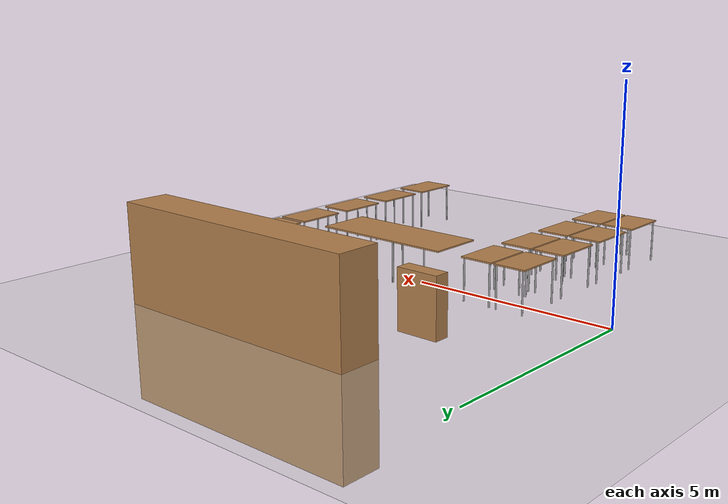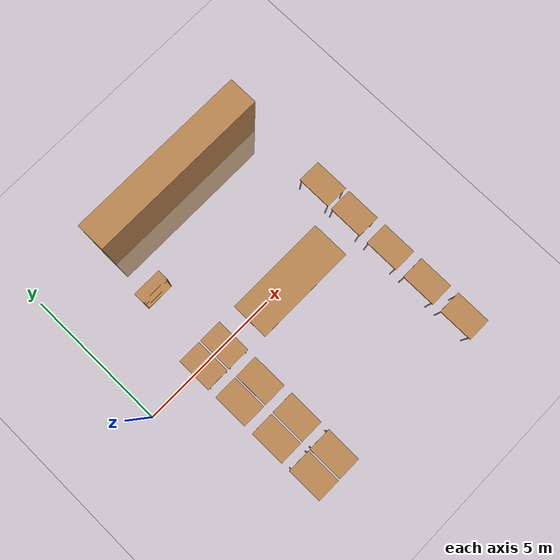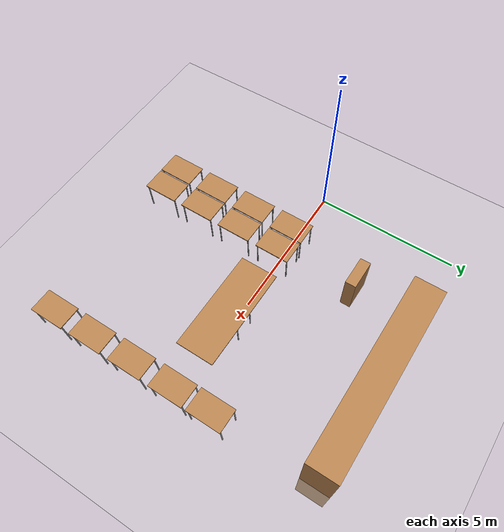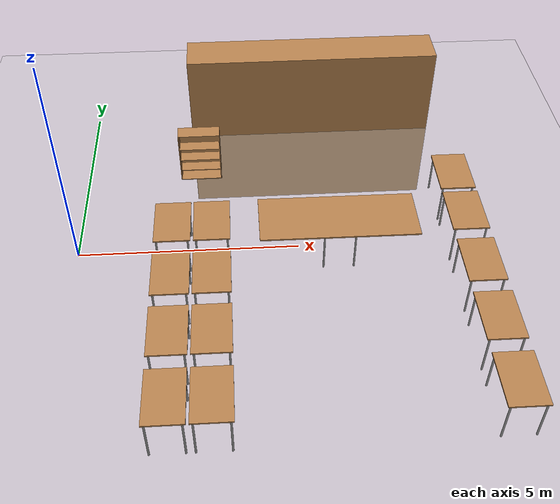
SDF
<sdf version="1.6">
 <world name="default">
  <model name="ground_plane">
   <static>1</static>
   <link name="link">
    <collision name="collision">
     <geometry><plane><normal>0 0 1</normal><size>100 100</size></plane></geometry>
     <surface><friction><ode><mu>100</mu><mu2>50</mu2></ode></friction></surface>
    </collision>
    <visual name="visual">
     <cast_shadows>0</cast_shadows>
     <geometry><plane><normal>0 0 1</normal><size>100 100</size></plane></geometry>
     <material>
      <script><uri>file://media/materials/scripts/gazebo.material</uri><name>Gazebo/Grey</name></script>
     </material>
    </visual>
   </link>
  </model>
  <model name="table_12">
   <pose>2.211245 -4.582113 0 0 -0 1.568221</pose>
   <static>1</static>
   <link name="table_12_link">
    <collision name="surface">
     <pose>0 0 1 0 -0 0</pose>
     <geometry><box><size>1.2 0.8 0.035</size></box></geometry>
     <surface><friction><ode><mu>0.6</mu><mu2>0.6</mu2></ode></friction></surface>
    </collision>
    <visual name="visual1">
     <pose>0 0 1 0 -0 0</pose>
     <geometry><box><size>1.2 0.8 0.035</size></box></geometry>
     <material>
      <script><uri>file://media/materials/scripts/gazebo.material</uri><name>Gazebo/Wood</name></script>
     </material>
    </visual>
    <collision name="front_left_leg">
     <pose>0.56 0.34 0.5 0 -0 0</pose>
     <geometry><cylinder><radius>0.02</radius><length>1</length></cylinder></geometry>
    </collision>
    <visual name="front_left_leg">
     <pose>0.56 0.34 0.5 0 -0 0</pose>
     <geometry><cylinder><radius>0.02</radius><length>1</length></cylinder></geometry>
     <material>
      <script><uri>file://media/materials/scripts/gazebo.material</uri><name>Gazebo/Grey</name></script>
     </material>
    </visual>
    <collision name="front_right_leg">
     <pose>0.56 -0.34 0.5 0 -0 0</pose>
     <geometry><cylinder><radius>0.02</radius><length>1</length></cylinder></geometry>
    </collision>
    <visual name="front_right_leg">
     <pose>0.56 -0.34 0.5 0 -0 0</pose>
     <geometry><cylinder><radius>0.02</radius><length>1</length></cylinder></geometry>
     <material>
      <script><uri>file://media/materials/scripts/gazebo.material</uri><name>Gazebo/Grey</name></script>
     </material>
    </visual>
    <collision name="back_right_leg">
     <pose>-0.56 -0.34 0.5 0 -0 0</pose>
     <geometry><cylinder><radius>0.02</radius><length>1</length></cylinder></geometry>
    </collision>
    <visual name="back_right_leg">
     <pose>-0.56 -0.34 0.5 0 -0 0</pose>
     <geometry><cylinder><radius>0.02</radius><length>1</length></cylinder></geometry>
     <material>
      <script><uri>file://media/materials/scripts/gazebo.material</uri><name>Gazebo/Grey</name></script>
     </material>
    </visual>
    <collision name="back_left_leg">
     <pose>-0.56 0.34 0.5 0 -0 0</pose>
     <geometry><cylinder><radius>0.02</radius><length>1</length></cylinder></geometry>
    </collision>
    <visual name="back_left_leg">
     <pose>-0.56 0.34 0.5 0 -0 0</pose>
     <geometry><cylinder><radius>0.02</radius><length>1</length></cylinder></geometry>
     <material>
      <script><uri>file://media/materials/scripts/gazebo.material</uri><name>Gazebo/Grey</name></script>
     </material>
    </visual>
   </link>
  </model>
  <model name="table_13">
   <pose>2.211245 -3.082113 0 0 -0 1.568221</pose>
   <static>1</static>
   <link name="table_13_link">
    <collision name="surface">
     <pose>0 0 1 0 -0 0</pose>
     <geometry><box><size>1.2 0.8 0.035</size></box></geometry>
     <surface><friction><ode><mu>0.6</mu><mu2>0.6</mu2></ode></friction></surface>
    </collision>
    <visual name="visual1">
     <pose>0 0 1 0 -0 0</pose>
     <geometry><box><size>1.2 0.8 0.035</size></box></geometry>
     <material>
      <script><uri>file://media/materials/scripts/gazebo.material</uri><name>Gazebo/Wood</name></script>
     </material>
    </visual>
    <collision name="front_left_leg">
     <pose>0.56 0.34 0.5 0 -0 0</pose>
     <geometry><cylinder><radius>0.02</radius><length>1</length></cylinder></geometry>
    </collision>
    <visual name="front_left_leg">
     <pose>0.56 0.34 0.5 0 -0 0</pose>
     <geometry><cylinder><radius>0.02</radius><length>1</length></cylinder></geometry>
     <material>
      <script><uri>file://media/materials/scripts/gazebo.material</uri><name>Gazebo/Grey</name></script>
     </material>
    </visual>
    <collision name="front_right_leg">
     <pose>0.56 -0.34 0.5 0 -0 0</pose>
     <geometry><cylinder><radius>0.02</radius><length>1</length></cylinder></geometry>
    </collision>
    <visual name="front_right_leg">
     <pose>0.56 -0.34 0.5 0 -0 0</pose>
     <geometry><cylinder><radius>0.02</radius><length>1</length></cylinder></geometry>
     <material>
      <script><uri>file://media/materials/scripts/gazebo.material</uri><name>Gazebo/Grey</name></script>
     </material>
    </visual>
    <collision name="back_right_leg">
     <pose>-0.56 -0.34 0.5 0 -0 0</pose>
     <geometry><cylinder><radius>0.02</radius><length>1</length></cylinder></geometry>
    </collision>
    <visual name="back_right_leg">
     <pose>-0.56 -0.34 0.5 0 -0 0</pose>
     <geometry><cylinder><radius>0.02</radius><length>1</length></cylinder></geometry>
     <material>
      <script><uri>file://media/materials/scripts/gazebo.material</uri><name>Gazebo/Grey</name></script>
     </material>
    </visual>
    <collision name="back_left_leg">
     <pose>-0.56 0.34 0.5 0 -0 0</pose>
     <geometry><cylinder><radius>0.02</radius><length>1</length></cylinder></geometry>
    </collision>
    <visual name="back_left_leg">
     <pose>-0.56 0.34 0.5 0 -0 0</pose>
     <geometry><cylinder><radius>0.02</radius><length>1</length></cylinder></geometry>
     <material>
      <script><uri>file://media/materials/scripts/gazebo.material</uri><name>Gazebo/Grey</name></script>
     </material>
    </visual>
   </link>
  </model>
  <model name="table_14">
   <pose>2.211245 -1.582113 0 0 -0 1.568221</pose>
   <static>1</static>
   <link name="table_14_link">
    <collision name="surface">
     <pose>0 0 1 0 -0 0</pose>
     <geometry><box><size>1.2 0.8 0.035</size></box></geometry>
     <surface><friction><ode><mu>0.6</mu><mu2>0.6</mu2></ode></friction></surface>
    </collision>
    <visual name="visual1">
     <pose>0 0 1 0 -0 0</pose>
     <geometry><box><size>1.2 0.8 0.035</size></box></geometry>
     <material>
      <script><uri>file://media/materials/scripts/gazebo.material</uri><name>Gazebo/Wood</name></script>
     </material>
    </visual>
    <collision name="front_left_leg">
     <pose>0.56 0.34 0.5 0 -0 0</pose>
     <geometry><cylinder><radius>0.02</radius><length>1</length></cylinder></geometry>
    </collision>
    <visual name="front_left_leg">
     <pose>0.56 0.34 0.5 0 -0 0</pose>
     <geometry><cylinder><radius>0.02</radius><length>1</length></cylinder></geometry>
     <material>
      <script><uri>file://media/materials/scripts/gazebo.material</uri><name>Gazebo/Grey</name></script>
     </material>
    </visual>
    <collision name="front_right_leg">
     <pose>0.56 -0.34 0.5 0 -0 0</pose>
     <geometry><cylinder><radius>0.02</radius><length>1</length></cylinder></geometry>
    </collision>
    <visual name="front_right_leg">
     <pose>0.56 -0.34 0.5 0 -0 0</pose>
     <geometry><cylinder><radius>0.02</radius><length>1</length></cylinder></geometry>
     <material>
      <script><uri>file://media/materials/scripts/gazebo.material</uri><name>Gazebo/Grey</name></script>
     </material>
    </visual>
    <collision name="back_right_leg">
     <pose>-0.56 -0.34 0.5 0 -0 0</pose>
     <geometry><cylinder><radius>0.02</radius><length>1</length></cylinder></geometry>
    </collision>
    <visual name="back_right_leg">
     <pose>-0.56 -0.34 0.5 0 -0 0</pose>
     <geometry><cylinder><radius>0.02</radius><length>1</length></cylinder></geometry>
     <material>
      <script><uri>file://media/materials/scripts/gazebo.material</uri><name>Gazebo/Grey</name></script>
     </material>
    </visual>
    <collision name="back_left_leg">
     <pose>-0.56 0.34 0.5 0 -0 0</pose>
     <geometry><cylinder><radius>0.02</radius><length>1</length></cylinder></geometry>
    </collision>
    <visual name="back_left_leg">
     <pose>-0.56 0.34 0.5 0 -0 0</pose>
     <geometry><cylinder><radius>0.02</radius><length>1</length></cylinder></geometry>
     <material>
      <script><uri>file://media/materials/scripts/gazebo.material</uri><name>Gazebo/Grey</name></script>
     </material>
    </visual>
   </link>
  </model>
  <model name="table_15">
   <pose>2.211245 -0.082113 0 0 -0 1.568221</pose>
   <static>1</static>
   <link name="table_15_link">
    <collision name="surface">
     <pose>0 0 1 0 -0 0</pose>
     <geometry><box><size>1.2 0.8 0.035</size></box></geometry>
     <surface><friction><ode><mu>0.6</mu><mu2>0.6</mu2></ode></friction></surface>
    </collision>
    <visual name="visual1">
     <pose>0 0 1 0 -0 0</pose>
     <geometry><box><size>1.2 0.8 0.035</size></box></geometry>
     <material>
      <script><uri>file://media/materials/scripts/gazebo.material</uri><name>Gazebo/Wood</name></script>
     </material>
    </visual>
    <collision name="front_left_leg">
     <pose>0.56 0.34 0.5 0 -0 0</pose>
     <geometry><cylinder><radius>0.02</radius><length>1</length></cylinder></geometry>
    </collision>
    <visual name="front_left_leg">
     <pose>0.56 0.34 0.5 0 -0 0</pose>
     <geometry><cylinder><radius>0.02</radius><length>1</length></cylinder></geometry>
     <material>
      <script><uri>file://media/materials/scripts/gazebo.material</uri><name>Gazebo/Grey</name></script>
     </material>
    </visual>
    <collision name="front_right_leg">
     <pose>0.56 -0.34 0.5 0 -0 0</pose>
     <geometry><cylinder><radius>0.02</radius><length>1</length></cylinder></geometry>
    </collision>
    <visual name="front_right_leg">
     <pose>0.56 -0.34 0.5 0 -0 0</pose>
     <geometry><cylinder><radius>0.02</radius><length>1</length></cylinder></geometry>
     <material>
      <script><uri>file://media/materials/scripts/gazebo.material</uri><name>Gazebo/Grey</name></script>
     </material>
    </visual>
    <collision name="back_right_leg">
     <pose>-0.56 -0.34 0.5 0 -0 0</pose>
     <geometry><cylinder><radius>0.02</radius><length>1</length></cylinder></geometry>
    </collision>
    <visual name="back_right_leg">
     <pose>-0.56 -0.34 0.5 0 -0 0</pose>
     <geometry><cylinder><radius>0.02</radius><length>1</length></cylinder></geometry>
     <material>
      <script><uri>file://media/materials/scripts/gazebo.material</uri><name>Gazebo/Grey</name></script>
     </material>
    </visual>
    <collision name="back_left_leg">
     <pose>-0.56 0.34 0.5 0 -0 0</pose>
     <geometry><cylinder><radius>0.02</radius><length>1</length></cylinder></geometry>
    </collision>
    <visual name="back_left_leg">
     <pose>-0.56 0.34 0.5 0 -0 0</pose>
     <geometry><cylinder><radius>0.02</radius><length>1</length></cylinder></geometry>
     <material>
      <script><uri>file://media/materials/scripts/gazebo.material</uri><name>Gazebo/Grey</name></script>
     </material>
    </visual>
   </link>
  </model>
  <model name="table_16">
   <pose>3.069529 -4.582113 0 0 -0 1.568221</pose>
   <static>1</static>
   <link name="table_16_link">
    <collision name="surface">
     <pose>0 0 1 0 -0 0</pose>
     <geometry><box><size>1.2 0.8 0.035</size></box></geometry>
     <surface><friction><ode><mu>0.6</mu><mu2>0.6</mu2></ode></friction></surface>
    </collision>
    <visual name="visual1">
     <pose>0 0 1 0 -0 0</pose>
     <geometry><box><size>1.2 0.8 0.035</size></box></geometry>
     <material>
      <script><uri>file://media/materials/scripts/gazebo.material</uri><name>Gazebo/Wood</name></script>
     </material>
    </visual>
    <collision name="front_left_leg">
     <pose>0.56 0.34 0.5 0 -0 0</pose>
     <geometry><cylinder><radius>0.02</radius><length>1</length></cylinder></geometry>
    </collision>
    <visual name="front_left_leg">
     <pose>0.56 0.34 0.5 0 -0 0</pose>
     <geometry><cylinder><radius>0.02</radius><length>1</length></cylinder></geometry>
     <material>
      <script><uri>file://media/materials/scripts/gazebo.material</uri><name>Gazebo/Grey</name></script>
     </material>
    </visual>
    <collision name="front_right_leg">
     <pose>0.56 -0.34 0.5 0 -0 0</pose>
     <geometry><cylinder><radius>0.02</radius><length>1</length></cylinder></geometry>
    </collision>
    <visual name="front_right_leg">
     <pose>0.56 -0.34 0.5 0 -0 0</pose>
     <geometry><cylinder><radius>0.02</radius><length>1</length></cylinder></geometry>
     <material>
      <script><uri>file://media/materials/scripts/gazebo.material</uri><name>Gazebo/Grey</name></script>
     </material>
    </visual>
    <collision name="back_right_leg">
     <pose>-0.56 -0.34 0.5 0 -0 0</pose>
     <geometry><cylinder><radius>0.02</radius><length>1</length></cylinder></geometry>
    </collision>
    <visual name="back_right_leg">
     <pose>-0.56 -0.34 0.5 0 -0 0</pose>
     <geometry><cylinder><radius>0.02</radius><length>1</length></cylinder></geometry>
     <material>
      <script><uri>file://media/materials/scripts/gazebo.material</uri><name>Gazebo/Grey</name></script>
     </material>
    </visual>
    <collision name="back_left_leg">
     <pose>-0.56 0.34 0.5 0 -0 0</pose>
     <geometry><cylinder><radius>0.02</radius><length>1</length></cylinder></geometry>
    </collision>
    <visual name="back_left_leg">
     <pose>-0.56 0.34 0.5 0 -0 0</pose>
     <geometry><cylinder><radius>0.02</radius><length>1</length></cylinder></geometry>
     <material>
      <script><uri>file://media/materials/scripts/gazebo.material</uri><name>Gazebo/Grey</name></script>
     </material>
    </visual>
   </link>
  </model>
  <model name="table_17">
   <pose>3.069529 -3.082113 0 0 -0 1.568221</pose>
   <static>1</static>
   <link name="table_17_link">
    <collision name="surface">
     <pose>0 0 1 0 -0 0</pose>
     <geometry><box><size>1.2 0.8 0.035</size></box></geometry>
     <surface><friction><ode><mu>0.6</mu><mu2>0.6</mu2></ode></friction></surface>
    </collision>
    <visual name="visual1">
     <pose>0 0 1 0 -0 0</pose>
     <geometry><box><size>1.2 0.8 0.035</size></box></geometry>
     <material>
      <script><uri>file://media/materials/scripts/gazebo.material</uri><name>Gazebo/Wood</name></script>
     </material>
    </visual>
    <collision name="front_left_leg">
     <pose>0.56 0.34 0.5 0 -0 0</pose>
     <geometry><cylinder><radius>0.02</radius><length>1</length></cylinder></geometry>
    </collision>
    <visual name="front_left_leg">
     <pose>0.56 0.34 0.5 0 -0 0</pose>
     <geometry><cylinder><radius>0.02</radius><length>1</length></cylinder></geometry>
     <material>
      <script><uri>file://media/materials/scripts/gazebo.material</uri><name>Gazebo/Grey</name></script>
     </material>
    </visual>
    <collision name="front_right_leg">
     <pose>0.56 -0.34 0.5 0 -0 0</pose>
     <geometry><cylinder><radius>0.02</radius><length>1</length></cylinder></geometry>
    </collision>
    <visual name="front_right_leg">
     <pose>0.56 -0.34 0.5 0 -0 0</pose>
     <geometry><cylinder><radius>0.02</radius><length>1</length></cylinder></geometry>
     <material>
      <script><uri>file://media/materials/scripts/gazebo.material</uri><name>Gazebo/Grey</name></script>
     </material>
    </visual>
    <collision name="back_right_leg">
     <pose>-0.56 -0.34 0.5 0 -0 0</pose>
     <geometry><cylinder><radius>0.02</radius><length>1</length></cylinder></geometry>
    </collision>
    <visual name="back_right_leg">
     <pose>-0.56 -0.34 0.5 0 -0 0</pose>
     <geometry><cylinder><radius>0.02</radius><length>1</length></cylinder></geometry>
     <material>
      <script><uri>file://media/materials/scripts/gazebo.material</uri><name>Gazebo/Grey</name></script>
     </material>
    </visual>
    <collision name="back_left_leg">
     <pose>-0.56 0.34 0.5 0 -0 0</pose>
     <geometry><cylinder><radius>0.02</radius><length>1</length></cylinder></geometry>
    </collision>
    <visual name="back_left_leg">
     <pose>-0.56 0.34 0.5 0 -0 0</pose>
     <geometry><cylinder><radius>0.02</radius><length>1</length></cylinder></geometry>
     <material>
      <script><uri>file://media/materials/scripts/gazebo.material</uri><name>Gazebo/Grey</name></script>
     </material>
    </visual>
   </link>
  </model>
  <model name="table_18">
   <pose>3.069529 -1.582113 0 0 -0 1.568221</pose>
   <static>1</static>
   <link name="table_18_link">
    <collision name="surface">
     <pose>0 0 1 0 -0 0</pose>
     <geometry><box><size>1.2 0.8 0.035</size></box></geometry>
     <surface><friction><ode><mu>0.6</mu><mu2>0.6</mu2></ode></friction></surface>
    </collision>
    <visual name="visual1">
     <pose>0 0 1 0 -0 0</pose>
     <geometry><box><size>1.2 0.8 0.035</size></box></geometry>
     <material>
      <script><uri>file://media/materials/scripts/gazebo.material</uri><name>Gazebo/Wood</name></script>
     </material>
    </visual>
    <collision name="front_left_leg">
     <pose>0.56 0.34 0.5 0 -0 0</pose>
     <geometry><cylinder><radius>0.02</radius><length>1</length></cylinder></geometry>
    </collision>
    <visual name="front_left_leg">
     <pose>0.56 0.34 0.5 0 -0 0</pose>
     <geometry><cylinder><radius>0.02</radius><length>1</length></cylinder></geometry>
     <material>
      <script><uri>file://media/materials/scripts/gazebo.material</uri><name>Gazebo/Grey</name></script>
     </material>
    </visual>
    <collision name="front_right_leg">
     <pose>0.56 -0.34 0.5 0 -0 0</pose>
     <geometry><cylinder><radius>0.02</radius><length>1</length></cylinder></geometry>
    </collision>
    <visual name="front_right_leg">
     <pose>0.56 -0.34 0.5 0 -0 0</pose>
     <geometry><cylinder><radius>0.02</radius><length>1</length></cylinder></geometry>
     <material>
      <script><uri>file://media/materials/scripts/gazebo.material</uri><name>Gazebo/Grey</name></script>
     </material>
    </visual>
    <collision name="back_right_leg">
     <pose>-0.56 -0.34 0.5 0 -0 0</pose>
     <geometry><cylinder><radius>0.02</radius><length>1</length></cylinder></geometry>
    </collision>
    <visual name="back_right_leg">
     <pose>-0.56 -0.34 0.5 0 -0 0</pose>
     <geometry><cylinder><radius>0.02</radius><length>1</length></cylinder></geometry>
     <material>
      <script><uri>file://media/materials/scripts/gazebo.material</uri><name>Gazebo/Grey</name></script>
     </material>
    </visual>
    <collision name="back_left_leg">
     <pose>-0.56 0.34 0.5 0 -0 0</pose>
     <geometry><cylinder><radius>0.02</radius><length>1</length></cylinder></geometry>
    </collision>
    <visual name="back_left_leg">
     <pose>-0.56 0.34 0.5 0 -0 0</pose>
     <geometry><cylinder><radius>0.02</radius><length>1</length></cylinder></geometry>
     <material>
      <script><uri>file://media/materials/scripts/gazebo.material</uri><name>Gazebo/Grey</name></script>
     </material>
    </visual>
   </link>
  </model>
  <model name="table_19">
   <pose>3.069529 -0.082113 0 0 -0 1.568221</pose>
   <static>1</static>
   <link name="table_19_link">
    <collision name="surface">
     <pose>0 0 1 0 -0 0</pose>
     <geometry><box><size>1.2 0.8 0.035</size></box></geometry>
     <surface><friction><ode><mu>0.6</mu><mu2>0.6</mu2></ode></friction></surface>
    </collision>
    <visual name="visual1">
     <pose>0 0 1 0 -0 0</pose>
     <geometry><box><size>1.2 0.8 0.035</size></box></geometry>
     <material>
      <script><uri>file://media/materials/scripts/gazebo.material</uri><name>Gazebo/Wood</name></script>
     </material>
    </visual>
    <collision name="front_left_leg">
     <pose>0.56 0.34 0.5 0 -0 0</pose>
     <geometry><cylinder><radius>0.02</radius><length>1</length></cylinder></geometry>
    </collision>
    <visual name="front_left_leg">
     <pose>0.56 0.34 0.5 0 -0 0</pose>
     <geometry><cylinder><radius>0.02</radius><length>1</length></cylinder></geometry>
     <material>
      <script><uri>file://media/materials/scripts/gazebo.material</uri><name>Gazebo/Grey</name></script>
     </material>
    </visual>
    <collision name="front_right_leg">
     <pose>0.56 -0.34 0.5 0 -0 0</pose>
     <geometry><cylinder><radius>0.02</radius><length>1</length></cylinder></geometry>
    </collision>
    <visual name="front_right_leg">
     <pose>0.56 -0.34 0.5 0 -0 0</pose>
     <geometry><cylinder><radius>0.02</radius><length>1</length></cylinder></geometry>
     <material>
      <script><uri>file://media/materials/scripts/gazebo.material</uri><name>Gazebo/Grey</name></script>
     </material>
    </visual>
    <collision name="back_right_leg">
     <pose>-0.56 -0.34 0.5 0 -0 0</pose>
     <geometry><cylinder><radius>0.02</radius><length>1</length></cylinder></geometry>
    </collision>
    <visual name="back_right_leg">
     <pose>-0.56 -0.34 0.5 0 -0 0</pose>
     <geometry><cylinder><radius>0.02</radius><length>1</length></cylinder></geometry>
     <material>
      <script><uri>file://media/materials/scripts/gazebo.material</uri><name>Gazebo/Grey</name></script>
     </material>
    </visual>
    <collision name="back_left_leg">
     <pose>-0.56 0.34 0.5 0 -0 0</pose>
     <geometry><cylinder><radius>0.02</radius><length>1</length></cylinder></geometry>
    </collision>
    <visual name="back_left_leg">
     <pose>-0.56 0.34 0.5 0 -0 0</pose>
     <geometry><cylinder><radius>0.02</radius><length>1</length></cylinder></geometry>
     <material>
      <script><uri>file://media/materials/scripts/gazebo.material</uri><name>Gazebo/Grey</name></script>
     </material>
    </visual>
   </link>
  </model>
  <model name="table_20">
   <pose>5.852119 -0.129126 0  0 -0 1.568221</pose>
   <static>1</static>
   <link name="table_20_link">
    <collision name="surface">
     <pose>0 0 1 0 -0 0</pose>
     <geometry><box><size>1.3 3.50 0.035</size></box></geometry>
     <surface><friction><ode><mu>0.6</mu><mu2>0.6</mu2></ode></friction></surface>
    </collision>
    <visual name="visual1">
     <pose>0 0 1 0 -0 0</pose>
     <geometry><box><size>1.3 3.50 0.035</size></box></geometry>
     <material>
      <script><uri>file://media/materials/scripts/gazebo.material</uri><name>Gazebo/Wood</name></script>
     </material>
    </visual>
    <collision name="front_left_leg">
     <pose>0.56 0.34 0.5 0 -0 0</pose>
     <geometry><cylinder><radius>0.02</radius><length>1</length></cylinder></geometry>
    </collision>
    <visual name="front_left_leg">
     <pose>0.56 0.34 0.5 0 -0 0</pose>
     <geometry><cylinder><radius>0.02</radius><length>1</length></cylinder></geometry>
     <material>
      <script><uri>file://media/materials/scripts/gazebo.material</uri><name>Gazebo/Grey</name></script>
     </material>
    </visual>
    <collision name="front_right_leg">
     <pose>0.56 -0.34 0.5 0 -0 0</pose>
     <geometry><cylinder><radius>0.02</radius><length>1</length></cylinder></geometry>
    </collision>
    <visual name="front_right_leg">
     <pose>0.56 -0.34 0.5 0 -0 0</pose>
     <geometry><cylinder><radius>0.02</radius><length>1</length></cylinder></geometry>
     <material>
      <script><uri>file://media/materials/scripts/gazebo.material</uri><name>Gazebo/Grey</name></script>
     </material>
    </visual>
    <collision name="back_right_leg">
     <pose>-0.56 -0.34 0.5 0 -0 0</pose>
     <geometry><cylinder><radius>0.02</radius><length>1</length></cylinder></geometry>
    </collision>
    <visual name="back_right_leg">
     <pose>-0.56 -0.34 0.5 0 -0 0</pose>
     <geometry><cylinder><radius>0.02</radius><length>1</length></cylinder></geometry>
     <material>
      <script><uri>file://media/materials/scripts/gazebo.material</uri><name>Gazebo/Grey</name></script>
     </material>
    </visual>
    <collision name="back_left_leg">
     <pose>-0.56 0.34 0.5 0 -0 0</pose>
     <geometry><cylinder><radius>0.02</radius><length>1</length></cylinder></geometry>
    </collision>
    <visual name="back_left_leg">
     <pose>-0.56 0.34 0.5 0 -0 0</pose>
     <geometry><cylinder><radius>0.02</radius><length>1</length></cylinder></geometry>
     <material>
      <script><uri>file://media/materials/scripts/gazebo.material</uri><name>Gazebo/Grey</name></script>
     </material>
    </visual>
   </link>
  </model>
  <model name="table_120">
   <pose>8.713411 -4.582113 0 0 -0 1.568221</pose>
   <static>1</static>
   <link name="table_120_link">
    <collision name="surface">
     <pose>0 0 1 0 -0 0</pose>
     <geometry><box><size>1.2 0.8 0.035</size></box></geometry>
     <surface><friction><ode><mu>0.6</mu><mu2>0.6</mu2></ode></friction></surface>
    </collision>
    <visual name="visual1">
     <pose>0 0 1 0 -0 0</pose>
     <geometry><box><size>1.2 0.8 0.035</size></box></geometry>
     <material>
      <script><uri>file://media/materials/scripts/gazebo.material</uri><name>Gazebo/Wood</name></script>
     </material>
    </visual>
    <collision name="front_left_leg">
     <pose>0.56 0.34 0.5 0 -0 0</pose>
     <geometry><cylinder><radius>0.02</radius><length>1</length></cylinder></geometry>
    </collision>
    <visual name="front_left_leg">
     <pose>0.56 0.34 0.5 0 -0 0</pose>
     <geometry><cylinder><radius>0.02</radius><length>1</length></cylinder></geometry>
     <material>
      <script><uri>file://media/materials/scripts/gazebo.material</uri><name>Gazebo/Grey</name></script>
     </material>
    </visual>
    <collision name="front_right_leg">
     <pose>0.56 -0.34 0.5 0 -0 0</pose>
     <geometry><cylinder><radius>0.02</radius><length>1</length></cylinder></geometry>
    </collision>
    <visual name="front_right_leg">
     <pose>0.56 -0.34 0.5 0 -0 0</pose>
     <geometry><cylinder><radius>0.02</radius><length>1</length></cylinder></geometry>
     <material>
      <script><uri>file://media/materials/scripts/gazebo.material</uri><name>Gazebo/Grey</name></script>
     </material>
    </visual>
    <collision name="back_right_leg">
     <pose>-0.56 -0.34 0.5 0 -0 0</pose>
     <geometry><cylinder><radius>0.02</radius><length>1</length></cylinder></geometry>
    </collision>
    <visual name="back_right_leg">
     <pose>-0.56 -0.34 0.5 0 -0 0</pose>
     <geometry><cylinder><radius>0.02</radius><length>1</length></cylinder></geometry>
     <material>
      <script><uri>file://media/materials/scripts/gazebo.material</uri><name>Gazebo/Grey</name></script>
     </material>
    </visual>
    <collision name="back_left_leg">
     <pose>-0.56 0.34 0.5 0 -0 0</pose>
     <geometry><cylinder><radius>0.02</radius><length>1</length></cylinder></geometry>
    </collision>
    <visual name="back_left_leg">
     <pose>-0.56 0.34 0.5 0 -0 0</pose>
     <geometry><cylinder><radius>0.02</radius><length>1</length></cylinder></geometry>
     <material>
      <script><uri>file://media/materials/scripts/gazebo.material</uri><name>Gazebo/Grey</name></script>
     </material>
    </visual>
   </link>
  </model>
  <model name="table_121">
   <pose>8.713411 -3.082113 0 0 -0 1.568221</pose>
   <static>1</static>
   <link name="table_121_link">
    <collision name="surface">
     <pose>0 0 1 0 -0 0</pose>
     <geometry><box><size>1.2 0.8 0.035</size></box></geometry>
     <surface><friction><ode><mu>0.6</mu><mu2>0.6</mu2></ode></friction></surface>
    </collision>
    <visual name="visual1">
     <pose>0 0 1 0 -0 0</pose>
     <geometry><box><size>1.2 0.8 0.035</size></box></geometry>
     <material>
      <script><uri>file://media/materials/scripts/gazebo.material</uri><name>Gazebo/Wood</name></script>
     </material>
    </visual>
    <collision name="front_left_leg">
     <pose>0.56 0.34 0.5 0 -0 0</pose>
     <geometry><cylinder><radius>0.02</radius><length>1</length></cylinder></geometry>
    </collision>
    <visual name="front_left_leg">
     <pose>0.56 0.34 0.5 0 -0 0</pose>
     <geometry><cylinder><radius>0.02</radius><length>1</length></cylinder></geometry>
     <material>
      <script><uri>file://media/materials/scripts/gazebo.material</uri><name>Gazebo/Grey</name></script>
     </material>
    </visual>
    <collision name="front_right_leg">
     <pose>0.56 -0.34 0.5 0 -0 0</pose>
     <geometry><cylinder><radius>0.02</radius><length>1</length></cylinder></geometry>
    </collision>
    <visual name="front_right_leg">
     <pose>0.56 -0.34 0.5 0 -0 0</pose>
     <geometry><cylinder><radius>0.02</radius><length>1</length></cylinder></geometry>
     <material>
      <script><uri>file://media/materials/scripts/gazebo.material</uri><name>Gazebo/Grey</name></script>
     </material>
    </visual>
    <collision name="back_right_leg">
     <pose>-0.56 -0.34 0.5 0 -0 0</pose>
     <geometry><cylinder><radius>0.02</radius><length>1</length></cylinder></geometry>
    </collision>
    <visual name="back_right_leg">
     <pose>-0.56 -0.34 0.5 0 -0 0</pose>
     <geometry><cylinder><radius>0.02</radius><length>1</length></cylinder></geometry>
     <material>
      <script><uri>file://media/materials/scripts/gazebo.material</uri><name>Gazebo/Grey</name></script>
     </material>
    </visual>
    <collision name="back_left_leg">
     <pose>-0.56 0.34 0.5 0 -0 0</pose>
     <geometry><cylinder><radius>0.02</radius><length>1</length></cylinder></geometry>
    </collision>
    <visual name="back_left_leg">
     <pose>-0.56 0.34 0.5 0 -0 0</pose>
     <geometry><cylinder><radius>0.02</radius><length>1</length></cylinder></geometry>
     <material>
      <script><uri>file://media/materials/scripts/gazebo.material</uri><name>Gazebo/Grey</name></script>
     </material>
    </visual>
   </link>
  </model>
  <model name="table_122">
   <pose>8.713411 -1.582113 0 0 -0 1.568221</pose>
   <static>1</static>
   <link name="table_122_link">
    <collision name="surface">
     <pose>0 0 1 0 -0 0</pose>
     <geometry><box><size>1.2 0.8 0.035</size></box></geometry>
     <surface><friction><ode><mu>0.6</mu><mu2>0.6</mu2></ode></friction></surface>
    </collision>
    <visual name="visual1">
     <pose>0 0 1 0 -0 0</pose>
     <geometry><box><size>1.2 0.8 0.035</size></box></geometry>
     <material>
      <script><uri>file://media/materials/scripts/gazebo.material</uri><name>Gazebo/Wood</name></script>
     </material>
    </visual>
    <collision name="front_left_leg">
     <pose>0.56 0.34 0.5 0 -0 0</pose>
     <geometry><cylinder><radius>0.02</radius><length>1</length></cylinder></geometry>
    </collision>
    <visual name="front_left_leg">
     <pose>0.56 0.34 0.5 0 -0 0</pose>
     <geometry><cylinder><radius>0.02</radius><length>1</length></cylinder></geometry>
     <material>
      <script><uri>file://media/materials/scripts/gazebo.material</uri><name>Gazebo/Grey</name></script>
     </material>
    </visual>
    <collision name="front_right_leg">
     <pose>0.56 -0.34 0.5 0 -0 0</pose>
     <geometry><cylinder><radius>0.02</radius><length>1</length></cylinder></geometry>
    </collision>
    <visual name="front_right_leg">
     <pose>0.56 -0.34 0.5 0 -0 0</pose>
     <geometry><cylinder><radius>0.02</radius><length>1</length></cylinder></geometry>
     <material>
      <script><uri>file://media/materials/scripts/gazebo.material</uri><name>Gazebo/Grey</name></script>
     </material>
    </visual>
    <collision name="back_right_leg">
     <pose>-0.56 -0.34 0.5 0 -0 0</pose>
     <geometry><cylinder><radius>0.02</radius><length>1</length></cylinder></geometry>
    </collision>
    <visual name="back_right_leg">
     <pose>-0.56 -0.34 0.5 0 -0 0</pose>
     <geometry><cylinder><radius>0.02</radius><length>1</length></cylinder></geometry>
     <material>
      <script><uri>file://media/materials/scripts/gazebo.material</uri><name>Gazebo/Grey</name></script>
     </material>
    </visual>
    <collision name="back_left_leg">
     <pose>-0.56 0.34 0.5 0 -0 0</pose>
     <geometry><cylinder><radius>0.02</radius><length>1</length></cylinder></geometry>
    </collision>
    <visual name="back_left_leg">
     <pose>-0.56 0.34 0.5 0 -0 0</pose>
     <geometry><cylinder><radius>0.02</radius><length>1</length></cylinder></geometry>
     <material>
      <script><uri>file://media/materials/scripts/gazebo.material</uri><name>Gazebo/Grey</name></script>
     </material>
    </visual>
   </link>
  </model>
  <model name="table_123">
   <pose>8.713411 -0.082113 0 0 -0 1.568221</pose>
   <static>1</static>
   <link name="table_123_link">
    <collision name="surface">
     <pose>0 0 1 0 -0 0</pose>
     <geometry><box><size>1.2 0.8 0.035</size></box></geometry>
     <surface><friction><ode><mu>0.6</mu><mu2>0.6</mu2></ode></friction></surface>
    </collision>
    <visual name="visual1">
     <pose>0 0 1 0 -0 0</pose>
     <geometry><box><size>1.2 0.8 0.035</size></box></geometry>
     <material>
      <script><uri>file://media/materials/scripts/gazebo.material</uri><name>Gazebo/Wood</name></script>
     </material>
    </visual>
    <collision name="front_left_leg">
     <pose>0.56 0.34 0.5 0 -0 0</pose>
     <geometry><cylinder><radius>0.02</radius><length>1</length></cylinder></geometry>
    </collision>
    <visual name="front_left_leg">
     <pose>0.56 0.34 0.5 0 -0 0</pose>
     <geometry><cylinder><radius>0.02</radius><length>1</length></cylinder></geometry>
     <material>
      <script><uri>file://media/materials/scripts/gazebo.material</uri><name>Gazebo/Grey</name></script>
     </material>
    </visual>
    <collision name="front_right_leg">
     <pose>0.56 -0.34 0.5 0 -0 0</pose>
     <geometry><cylinder><radius>0.02</radius><length>1</length></cylinder></geometry>
    </collision>
    <visual name="front_right_leg">
     <pose>0.56 -0.34 0.5 0 -0 0</pose>
     <geometry><cylinder><radius>0.02</radius><length>1</length></cylinder></geometry>
     <material>
      <script><uri>file://media/materials/scripts/gazebo.material</uri><name>Gazebo/Grey</name></script>
     </material>
    </visual>
    <collision name="back_right_leg">
     <pose>-0.56 -0.34 0.5 0 -0 0</pose>
     <geometry><cylinder><radius>0.02</radius><length>1</length></cylinder></geometry>
    </collision>
    <visual name="back_right_leg">
     <pose>-0.56 -0.34 0.5 0 -0 0</pose>
     <geometry><cylinder><radius>0.02</radius><length>1</length></cylinder></geometry>
     <material>
      <script><uri>file://media/materials/scripts/gazebo.material</uri><name>Gazebo/Grey</name></script>
     </material>
    </visual>
    <collision name="back_left_leg">
     <pose>-0.56 0.34 0.5 0 -0 0</pose>
     <geometry><cylinder><radius>0.02</radius><length>1</length></cylinder></geometry>
    </collision>
    <visual name="back_left_leg">
     <pose>-0.56 0.34 0.5 0 -0 0</pose>
     <geometry><cylinder><radius>0.02</radius><length>1</length></cylinder></geometry>
     <material>
      <script><uri>file://media/materials/scripts/gazebo.material</uri><name>Gazebo/Grey</name></script>
     </material>
    </visual>
   </link>
  </model>
  <model name="table_124">
   <pose>8.713411 1.244753 0  0 -0 1.568221</pose>
   <static>1</static>
   <link name="table_124_link">
    <collision name="surface">
     <pose>0 0 1 0 -0 0</pose>
     <geometry><box><size>1.2 0.8 0.035</size></box></geometry>
     <surface><friction><ode><mu>0.6</mu><mu2>0.6</mu2></ode></friction></surface>
    </collision>
    <visual name="visual1">
     <pose>0 0 1 0 -0 0</pose>
     <geometry><box><size>1.2 0.8 0.035</size></box></geometry>
     <material>
      <script><uri>file://media/materials/scripts/gazebo.material</uri><name>Gazebo/Wood</name></script>
     </material>
    </visual>
    <collision name="front_left_leg">
     <pose>0.56 0.34 0.5 0 -0 0</pose>
     <geometry><cylinder><radius>0.02</radius><length>1</length></cylinder></geometry>
    </collision>
    <visual name="front_left_leg">
     <pose>0.56 0.34 0.5 0 -0 0</pose>
     <geometry><cylinder><radius>0.02</radius><length>1</length></cylinder></geometry>
     <material>
      <script><uri>file://media/materials/scripts/gazebo.material</uri><name>Gazebo/Grey</name></script>
     </material>
    </visual>
    <collision name="front_right_leg">
     <pose>0.56 -0.34 0.5 0 -0 0</pose>
     <geometry><cylinder><radius>0.02</radius><length>1</length></cylinder></geometry>
    </collision>
    <visual name="front_right_leg">
     <pose>0.56 -0.34 0.5 0 -0 0</pose>
     <geometry><cylinder><radius>0.02</radius><length>1</length></cylinder></geometry>
     <material>
      <script><uri>file://media/materials/scripts/gazebo.material</uri><name>Gazebo/Grey</name></script>
     </material>
    </visual>
    <collision name="back_right_leg">
     <pose>-0.56 -0.34 0.5 0 -0 0</pose>
     <geometry><cylinder><radius>0.02</radius><length>1</length></cylinder></geometry>
    </collision>
    <visual name="back_right_leg">
     <pose>-0.56 -0.34 0.5 0 -0 0</pose>
     <geometry><cylinder><radius>0.02</radius><length>1</length></cylinder></geometry>
     <material>
      <script><uri>file://media/materials/scripts/gazebo.material</uri><name>Gazebo/Grey</name></script>
     </material>
    </visual>
    <collision name="back_left_leg">
     <pose>-0.56 0.34 0.5 0 -0 0</pose>
     <geometry><cylinder><radius>0.02</radius><length>1</length></cylinder></geometry>
    </collision>
    <visual name="back_left_leg">
     <pose>-0.56 0.34 0.5 0 -0 0</pose>
     <geometry><cylinder><radius>0.02</radius><length>1</length></cylinder></geometry>
     <material>
      <script><uri>file://media/materials/scripts/gazebo.material</uri><name>Gazebo/Grey</name></script>
     </material>
    </visual>
   </link>
  </model>
  <model name="ias_lab_bookshelf_0">
   <pose>2.770291 2.662647 0  0 0 -1.5707963</pose>
   <static>true</static>
   <link name="ias_lab_bookshelf_0_link">
    <inertial><mass>100</mass></inertial>
    <visual name="visual">
     <geometry>
      <mesh><uri>model://wheelchair_iaslab_gazebo/meshes/bookshelf.dae</uri><scale>1 1 1</scale></mesh>
     </geometry>
     <material>
      <script><name>Gazebo/Wood</name><uri>file://media/materials/scripts/gazebo.material</uri></script>
     </material>
    </visual>
    <collision name="collision">
     <geometry>
      <mesh><uri>model://wheelchair_iaslab_gazebo/meshes/bookshelf.dae</uri><scale>1 1 1</scale></mesh>
     </geometry>
    </collision>
   </link>
  </model>
  <model name="bookshelfs">
   <pose>5.648703 4.731802 0  0 -0.001854 0.000194</pose>
   <link name="bookshelfs_link">
    <inertial>
     <mass>1.93435</mass>
     <inertia>
      <ixx>0.322392</ixx>
      <ixy>0</ixy>
      <ixz>0</ixz>
      <iyy>0.764337</iyy>
      <iyz>0</iyz>
      <izz>0.764337</izz>
     </inertia>
    </inertial>
    <pose>-1e-06 -1e-06 0 0 -0 0</pose>
    <visual name="visual">
     <geometry><box><size>6.256060 1 4.5</size></box></geometry>
     <material>
      <lighting>1</lighting>
      <script><uri>file://media/materials/scripts/gazebo.material</uri><name>Gazebo/Wood</name></script>
     </material>
    </visual>
    <collision name="collision">
     <geometry><box><size>6.256060 1 4.5</size></box></geometry>
     <surface>
      <friction>
       <ode><mu>1</mu><mu2>1</mu2><fdir1>0 0 0</fdir1><slip1>0</slip1><slip2>0</slip2></ode>
       <torsional>
        <coefficient>1</coefficient>
        <patch_radius>0</patch_radius>
        <surface_radius>0</surface_radius>
        <use_patch_radius>1</use_patch_radius>
        <ode><slip>0</slip></ode>
       </torsional>
      </friction>
      <bounce><restitution_coefficient>0</restitution_coefficient><threshold>1e+06</threshold></bounce>
      <contact>
       <collide_without_contact>0</collide_without_contact>
       <collide_without_contact_bitmask>1</collide_without_contact_bitmask>
       <collide_bitmask>1</collide_bitmask>
       <ode>
        <soft_cfm>0</soft_cfm>
        <soft_erp>0.2</soft_erp>
        <kp>1e+13</kp>
        <kd>1</kd>
        <max_vel>0.01</max_vel>
        <min_depth>0</min_depth>
       </ode>
       <bullet>
        <split_impulse>1</split_impulse>
        <split_impulse_penetration_threshold>-0.01</split_impulse_penetration_threshold>
        <soft_cfm>0</soft_cfm>
        <soft_erp>0.2</soft_erp>
        <kp>1e+13</kp>
        <kd>1</kd>
       </bullet>
      </contact>
     </surface>
    </collision>
   </link>
   <static>true</static>
  </model>
 </world>
</sdf>
